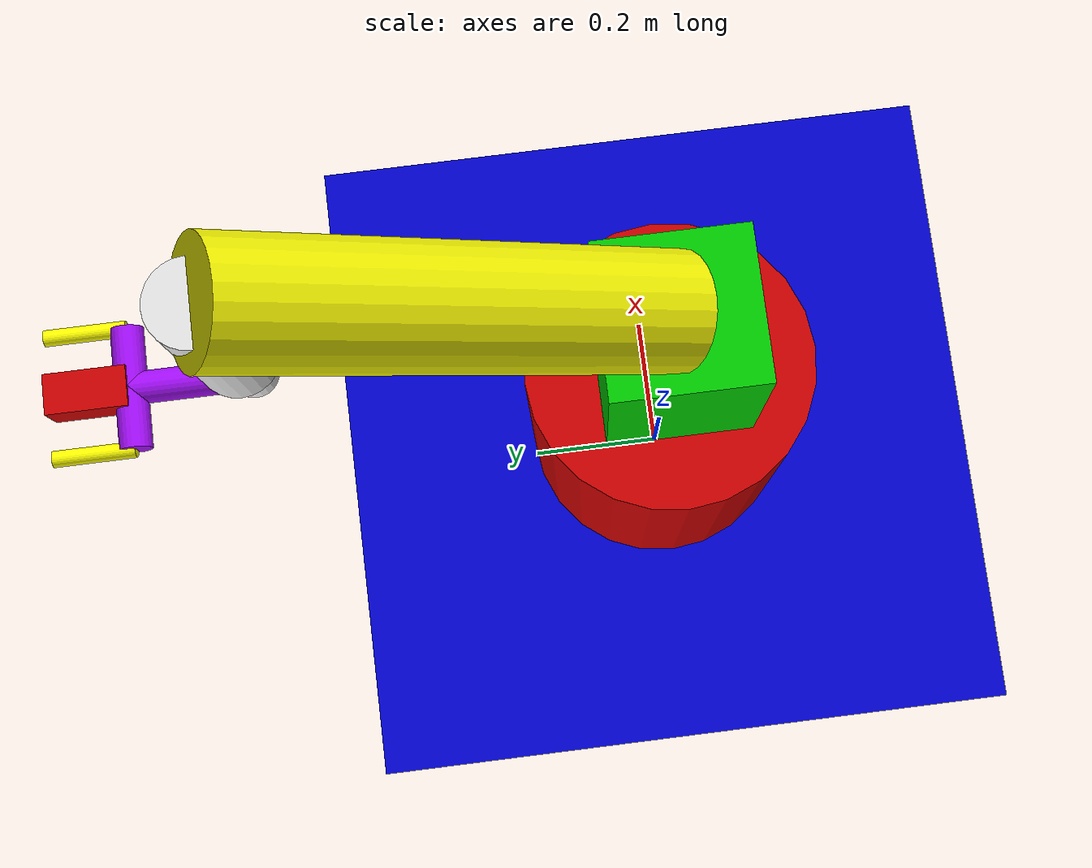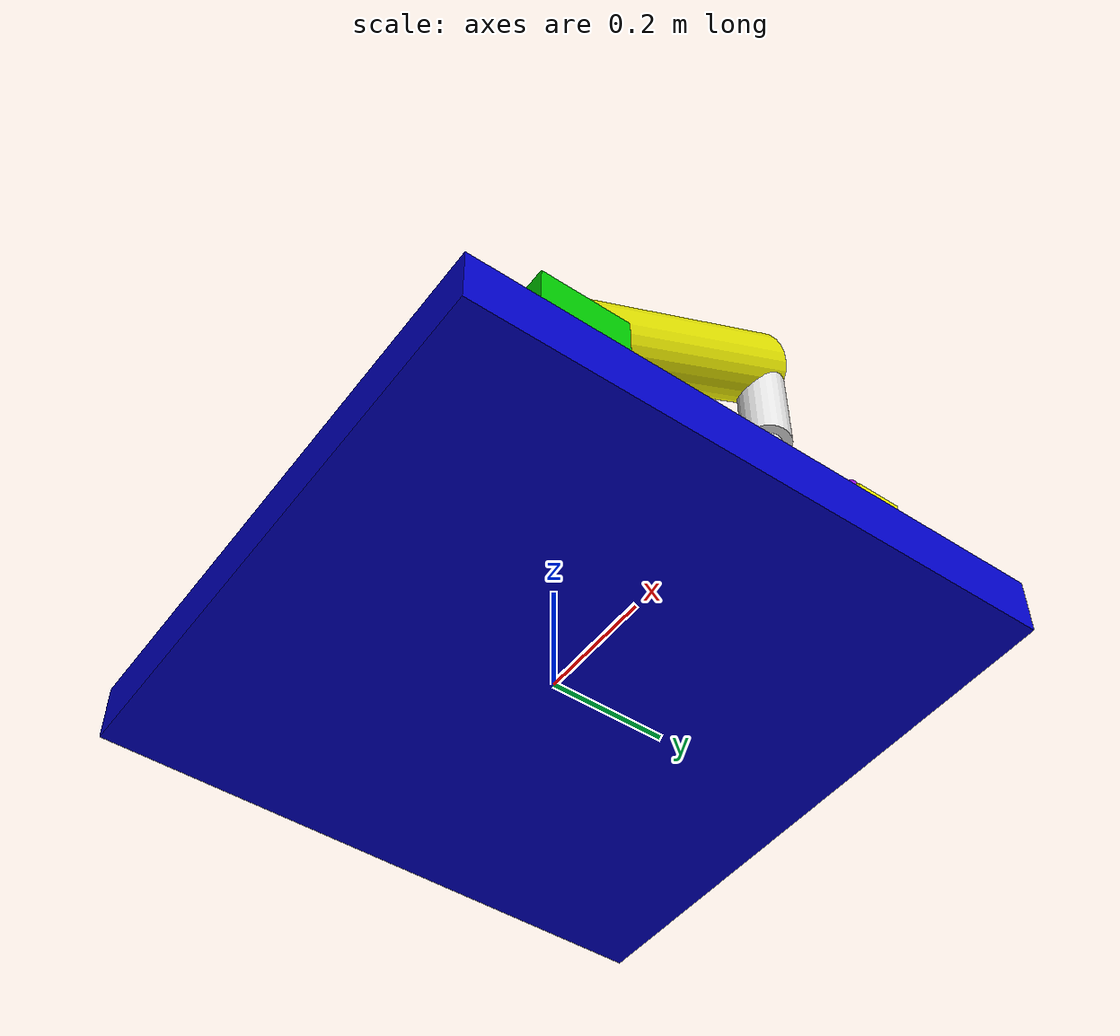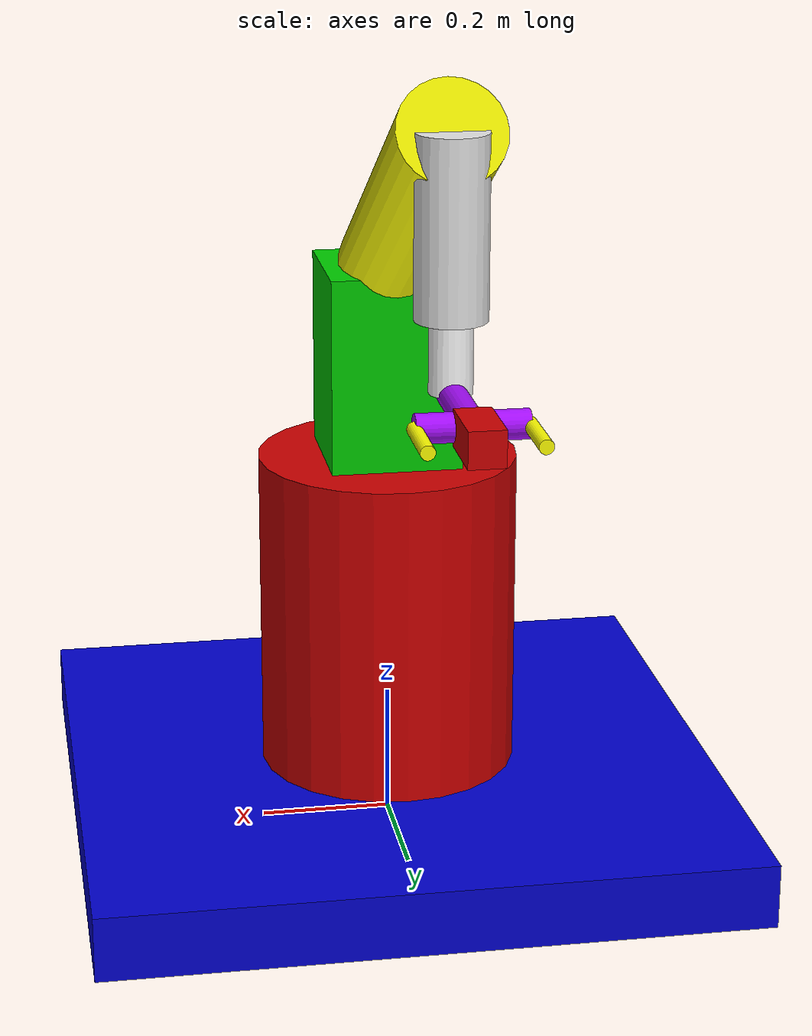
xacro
<?xml version="1.0"?>
<robot name="manipulator" xmlns:xacro="http://ros.org/wiki/xacro">

<xacro:include filename="$(find robot_description)/urdf/FromDegtoRad.xacro"/>
<xacro:include filename="$(find robot_description)/urdf/Inertial.xacro"/>
<!-- Joints and Links Names-->
<!-- Parameters that you can change-->

<!-- Base link-->
<xacro:property name = "size1_x" value= "1"/>
<xacro:property name = "size1_y" value= "1"/>
<xacro:property name = "size1_z" value= "0.1"/>

<!-- link 1-->
<xacro:property name = "len1" value= "0.5"/>
<xacro:property name = "rad1" value= "0.2"/>

<!-- link 2-->
<xacro:property name = "size2_x" value= "0.2"/>
<xacro:property name = "size2_y" value= "0.2"/>
<xacro:property name = "size2_z" value= "0.8"/>

<!-- link 3-->
<xacro:property name = "roll" value= "60"/>
<xacro:property name = "len3" value= "0.6"/>
<xacro:property name = "rad3" value= "0.075"/>

<!-- link 4-->
<xacro:property name = "len4" value= "0.25"/>
<xacro:property name = "rad4" value= "0.05"/>

<!-- link 5-->
<xacro:property name = "len5" value= "0.1"/>
<xacro:property name = "rad5" value= "0.03"/>

<!-- link 6-->
<xacro:property name = "len6" value= "0.15"/>
<xacro:property name = "rad6" value= "0.02"/>

<!-- link 7-->
<xacro:property name = "len7" value= "0.15"/>
<xacro:property name = "rad7" value= "0.02"/>

<!-- link 8-->
<xacro:property name = "len8" value= "0.1"/>
<xacro:property name = "rad8" value= "0.01"/>

<!-- link 9 the same as 8-->

<!-- Camera link -->
<xacro:property name = "camera_width" value= "0.05"/>
<xacro:property name = "camera_height" value= "0.1"/>

<!-- Base link - box-->

<!-- Definition and Geometry of world frame-->
  <link name="world_link"/>

<!-- zero_joint -->
  <joint name="zero_joint" type="fixed">
    <origin rpy="0 0 0" xyz="0 0 0"/>
    <parent link="world_link"/>
    <child link="base_link"/>
  </joint>

<!-- Definition and Geometry of base link-->

  <link name="base_link">
   <visual>
    <origin rpy="0 0 0" xyz="0 0 ${size1_z/2}"/>
     <geometry>
	 <box size = "${size1_x} ${size1_y} ${size1_z}"/>
     </geometry>
<!-- Material and color of 0 -->
   <material name = "blue">
     <color rgba = "0 0 0.8 1"/>
   </material>
   </visual>
  <collision>
       <origin rpy="0 0 0" xyz="0 0 0"/>
      <geometry>
        <box size = "${size1_x} ${size1_y} ${size1_z}"/>
      </geometry>
  </collision>
      <xacro:default_inertial mass="1000"/>

   </link>

<gazebo reference="base_link">
          <material>Gazebo/Wood</material>
</gazebo>

<!-- JOINT 1 -->
  <joint name="first_joint" type="revolute">
    <origin rpy="0 0 0" xyz="0 0 ${size1_z}"/>
    <parent link="base_link"/>
    <child link="first_link"/>
    <axis xyz="0 0 1"/>
     <limit effort="0" lower="-${90*DEG2RAD}" upper="${90*DEG2RAD}" velocity="1"/>
  </joint>

<!-- Transmission 1 -->
<transmission name="tran1">
    <type>transmission_interface/SimpleTransmission</type>
    <joint name="first_joint">
      <hardwareInterface>hardware_interface/EffortJointInterface</hardwareInterface>
    </joint>
    <actuator name="motor1">
      <hardwareInterface>hardware_interface/EffortJointInterface</hardwareInterface>
      <mechanicalReduction>1</mechanicalReduction>
    </actuator>
  </transmission>

<!-- Definition and Geometry of FIRST 1  link-->

  <link name="first_link">
   <visual>
    <origin rpy="0 0 0" xyz="0 0 ${len1/2}"/>
     <geometry>
	<cylinder radius = "${rad1}" length = "${len1}"/>
     </geometry>
<!-- Material and color of 1st -->
    <material name = "red">
     <color rgba = "0.8 0 0 1"/>
    </material>
   </visual>
  <collision>
      <origin rpy="0 0 0" xyz="0 0 ${len1/2}"/>
     <geometry>
	<cylinder radius = "${rad1}" length = "${len1}"/>
     </geometry>
  </collision>
      <xacro:default_inertial mass="100"/>
   </link>

<gazebo reference="first_link">
          <material>Gazebo/Blue</material>
</gazebo>

<!-- JOINT 2 -->
  <joint name="second_joint" type="prismatic">
    <origin rpy="0 0 0" xyz="0 0 ${len1}"/>
    <parent link="first_link"/>
    <child link="second_link"/>
    <axis xyz="0 0 1"/>
     <limit effort="10000" lower="0" upper="0.4" velocity="0.5"/>
  </joint>

<!-- TRANSMITTION 2 -->
<transmission name="tran2">
    <type>transmission_interface/SimpleTransmission</type>
    <joint name="second_joint">
      <hardwareInterface>hardware_interface/EffortJointInterface</hardwareInterface>
    </joint>
    <actuator name="motor2">
      <hardwareInterface>hardware_interface/EffortJointInterface</hardwareInterface>
      <mechanicalReduction>1</mechanicalReduction>
    </actuator>
  </transmission>

<!-- Definition and Geometry of SECOND 2 link-->

  <link name="second_link">
   <visual>
    <origin rpy="0 0 0" xyz="0 0 ${-size2_z/2+0.3}"/>
     <geometry>
	<box size = "${size2_x} ${size2_y} ${size2_z}"/>
     </geometry>
<!-- Material and color of 2st -->
    <material name = "green">
     <color rgba = "0 0.8 0 1"/>
    </material>
   </visual>
  <collision>
      <origin rpy="0 0 0" xyz="0 0 ${-size2_z/2+0.3}"/>
     <geometry>
	<box size = "0 0 0"/>
     </geometry>
  </collision>
      <xacro:default_inertial mass="1"/>
   </link>
<gazebo reference="second_link">
          <material>Gazebo/Red</material>
</gazebo>

<!-- JOINT 3 -->
  <joint name="third_joint" type="revolute">
    <origin rpy="${-roll*DEG2RAD} 0 0" xyz="0 0 0.3"/>
    <parent link="second_link"/>
    <child link="third_link"/>
    <axis xyz="1 0 0"/>
     <limit effort="1000" lower="-${45*DEG2RAD}" upper="${45*DEG2RAD}" velocity="0.5"/>
  </joint>

<!-- TRANSMITTION 3 -->
<transmission name="tran3">
    <type>transmission_interface/SimpleTransmission</type>
    <joint name="third_joint">
      <hardwareInterface>hardware_interface/EffortJointInterface</hardwareInterface>
    </joint>
    <actuator name="motor3">
      <hardwareInterface>hardware_interface/EffortJointInterface</hardwareInterface>
      <mechanicalReduction>1</mechanicalReduction>
    </actuator>
  </transmission>

<!-- Definition and Geometry of THIRD 3 link-->

  <link name="third_link">
   <visual>
       <origin rpy="0 0 0" xyz="0 0 ${len3/2}"/>
     <geometry>
	<cylinder radius = "${rad3}" length = "${len3}"/>
     </geometry>
<!-- Material and color of 3st -->
    <material name = "yellow">
     <color rgba = "0.9 0.9 0 1"/>
    </material>
   </visual>
  <collision>
       <origin rpy="0 0 0" xyz="0 0 ${len3/2}"/>
     <geometry>
	<cylinder radius = "${rad3}" length = "${len3}"/>
     </geometry>
  </collision>
      <xacro:default_inertial mass="20"/>
   </link>
<gazebo reference="third_link">
          <material>Gazebo/Yellow</material>
</gazebo>

<!-- JOINT 4 -->
  <joint name="fourth_joint" type="revolute">
    <origin rpy="${-(180-roll)*DEG2RAD} 0 0" xyz="0 0 ${len3}"/>
     <parent link="third_link"/>
     <child link="fourth_link"/>
    <axis xyz="1 0 0"/>
     <limit effort="1000" lower="0" upper="${180*DEG2RAD}" velocity="0.5"/>
  </joint>

<!-- TRANSMITTION 4 -->
<transmission name="tran4">
    <type>transmission_interface/SimpleTransmission</type>
    <joint name="fourth_joint">
      <hardwareInterface>hardware_interface/EffortJointInterface</hardwareInterface>
    </joint>
    <actuator name="motor4">
      <hardwareInterface>hardware_interface/EffortJointInterface</hardwareInterface>
      <mechanicalReduction>1</mechanicalReduction>
    </actuator>
  </transmission>

<!-- Definition and Geometry of FOURTH 4 link-->

  <link name="fourth_link">
   <visual>
       <origin rpy="0 0 0" xyz="0 0 ${len4/2}"/>
     <geometry>
	<cylinder radius = "${rad4}" length = "${len4}"/>
     </geometry>
<!-- Material and color of 4st -->
    <material name = "grey">
     <color rgba = "0.9 0.9 0.9 1"/>
    </material>
   </visual>
  <collision>
       <origin rpy="0 0 0" xyz="0 0 0.125"/>
     <geometry>
	<cylinder radius = "${rad4}" length = "${len4}"/>
     </geometry>
  </collision>
      <xacro:default_inertial mass="10"/>
   </link>
<gazebo reference="fourth_link">
          <material>Gazebo/Green</material>
</gazebo>

<!-- JOINT 5 -->
  <joint name="fifth_joint" type="revolute">
    <origin rpy="0 0 0" xyz="0 0 ${len4}"/>
     <parent link="fourth_link"/>
     <child link="fifth_link"/>
    <axis xyz="0 0 1"/>
     <limit effort="1000" lower="-${90*DEG2RAD}" upper="${90*DEG2RAD}" velocity="1"/>
  </joint>

<!-- TRANSMITTION 5 -->
<transmission name="tran5">
    <type>transmission_interface/SimpleTransmission</type>
    <joint name="fifth_joint">
      <hardwareInterface>hardware_interface/EffortJointInterface</hardwareInterface>
    </joint>
    <actuator name="motor5">
      <hardwareInterface>hardware_interface/EffortJointInterface</hardwareInterface>
      <mechanicalReduction>1</mechanicalReduction>
    </actuator>
  </transmission>

<!-- Definition and Geometry of FIFTH 5 link-->

  <link name="fifth_link">
   <visual>
       <origin rpy="0 0 0" xyz="0 0 ${len5/2}"/>
     <geometry>
	<cylinder radius = "${rad5}" length = "${len5}"/>
     </geometry>
<!-- Material and color of 5st -->
    <material name = "white">
     <color rgba = "1 1 1 1"/>
    </material>
   </visual>
  <collision>
       <origin rpy="0 0 0" xyz="0 0 ${len5/2}"/>
     <geometry>
	<cylinder radius = "${rad5}" length = "${len5}"/>
     </geometry>
  </collision>
      <xacro:default_inertial mass="4"/>
   </link>

<gazebo reference="fifth_link">
          <material>Gazebo/Purple</material>
</gazebo>

<!-- JOINT 6 -->
  <joint name="sixth_joint" type="revolute">
    <origin rpy="${90*DEG2RAD} 0 0" xyz="0 0 ${len5}"/>
     <parent link="fifth_link"/>
     <child link="sixth_link"/>
    <axis xyz="1 0 0"/>
     <limit effort="1000" lower="-${180*DEG2RAD}" upper="0" velocity="1"/>
  </joint>

<!-- TRANSMITTION 6 -->
<transmission name="tran6">
    <type>transmission_interface/SimpleTransmission</type>
    <joint name="sixth_joint">
      <hardwareInterface>hardware_interface/EffortJointInterface</hardwareInterface>
    </joint>
    <actuator name="motor6">
      <hardwareInterface>hardware_interface/EffortJointInterface</hardwareInterface>
      <mechanicalReduction>1</mechanicalReduction>
    </actuator>
  </transmission>

<!-- Definition and Geometry of SIXTH 6 link-->

  <link name="sixth_link">
   <visual>
       <origin rpy="0 0 0" xyz="0 0 ${len6/2}"/>
     <geometry>
	<cylinder radius = "${rad6}" length = "${len6}"/>
     </geometry>
<!-- Material and color of 6st -->
    <material name = "purple">
     <color rgba = "0.64 0.05 0.97 1"/>
    </material>
   </visual>
  <collision>
       <origin rpy="0 0 0" xyz="0 0 ${len6/2}"/>
     <geometry>
	<cylinder radius = "${rad6}" length = "${len6}"/>
     </geometry>
  </collision>
      <xacro:default_inertial mass="2"/>
   </link>
<gazebo reference="sixth_link">
          <material>Gazebo/Grass</material>
</gazebo>

<!-- JOINT 7 -->
  <joint name="seventh_joint" type="fixed">
    <origin rpy="0 ${90*DEG2RAD} 0" xyz="0 0 ${len6}"/>
     <parent link="sixth_link"/>
     <child link="seventh_link"/>
  </joint>

<!-- Definition and Geometry of SEVENTH 7 link-->

  <link name="seventh_link">
   <visual>
       <origin rpy="0 0 0" xyz="0 0 0"/>
     <geometry>
	<cylinder radius = "${rad7}" length = "${len7}"/>
     </geometry>
<!-- Material and color of 7 -->
    <material name = "purple">
     <color rgba = "0.64 0.05 0.97 1"/>
    </material>
   </visual>
  <collision>
       <origin rpy="0 0 0" xyz="0 0 0"/>
     <geometry>
	<cylinder radius = "${rad7}" length = "${len7}"/>
     </geometry>
  </collision>
      <xacro:default_inertial mass="1"/>
   </link>

<!-- JOINT 8 -->
  <joint name="eighth_joint" type="revolute">
    <origin rpy="0 -${90*DEG2RAD} 0" xyz="0 0 ${len7/2}"/>
     <parent link="seventh_link"/>
     <child link="eighth_link"/>
    <axis xyz="0 1 0"/>
     <limit effort="1000" lower="-${30*DEG2RAD}" upper="${30*DEG2RAD}" velocity="1"/>
  </joint>

<!-- TRANSMITTION 8 -->
<transmission name="tran8">
    <type>transmission_interface/SimpleTransmission</type>
    <joint name="eighth_joint">
      <hardwareInterface>hardware_interface/EffortJointInterface</hardwareInterface>
    </joint>
    <actuator name="motor8">
      <hardwareInterface>hardware_interface/EffortJointInterface</hardwareInterface>
      <mechanicalReduction>1</mechanicalReduction>
    </actuator>
  </transmission>

<!-- Definition and Geometry of SIXTH 8 link-->

  <link name="eighth_link">
   <visual>
       <origin rpy="0 0 0" xyz="0 0 ${len8/2}"/>
     <geometry>
	<cylinder radius = "${rad8}" length = "${len8}"/>
     </geometry>
<!-- Material and color of 8st -->
    <material name = "yellow2">
     <color rgba = "1 1 0 1"/>
    </material>
   </visual>
  <collision>
       <origin rpy="0 0 0" xyz="0 0 ${len8/2}"/>
     <geometry>
	<cylinder radius = "${rad8}" length = "${len8}"/>
     </geometry>
  </collision>
     <xacro:default_inertial mass="0.5"/>
   </link>

<!-- JOINT 9 -->
  <joint name="nineth_joint" type="revolute">
    <origin rpy="0 -${90*DEG2RAD} 0" xyz="0 0 -${len7/2}"/>
     <parent link="seventh_link"/>
     <child link="nineth_link"/>
    <axis xyz="0 1 0"/>
      <limit effort="1000" lower="-${30*DEG2RAD}" upper="${30*DEG2RAD}" velocity="1"/>
  </joint>

<!-- TRANSMITTION 9 -->
<transmission name="tran9">
    <type>transmission_interface/SimpleTransmission</type>
    <joint name="nineth_joint">
      <hardwareInterface>hardware_interface/EffortJointInterface</hardwareInterface>
    </joint>
    <actuator name="motor9">
      <hardwareInterface>hardware_interface/EffortJointInterface</hardwareInterface>
      <mechanicalReduction>1</mechanicalReduction>
    </actuator>
  </transmission>

<!-- Definition and Geometry of NINETH 9 link-->

  <link name="nineth_link">
   <visual>
       <origin rpy="0 0 0" xyz="0 0 ${len8/2}"/>
     <geometry>
	<cylinder radius = "${rad8}" length = "${len8}"/>
     </geometry>
<!-- Material and color of 8st -->
    <material name = "yellow2">
     <color rgba = "1 1 0 1"/>
    </material>
   </visual>
  <collision>
       <origin rpy="0 0 0" xyz="0 0 ${len8/2}"/>
     <geometry>
	<cylinder radius = "${rad8}" length = "${len8}"/>
     </geometry>
  </collision>
      <xacro:default_inertial mass="0.5"/>
   </link>

<!-- CAMERA to the 7 Fixed Link-->

<!-- Camera Joint-->
	<joint name="camera_joint" type="fixed">
		<axis xyz = "-1 0 0" />
    	<origin rpy="0 ${90*DEG2RAD} 0" xyz="0 0 ${len6}"/>
    	<parent link="sixth_link"/>
   		<child link="camera_link"/>
 	</joint>

<!-- Camera Link-->
 <link name="camera_link">
    <collision>
      <origin xyz=" ${-camera_height/2} 0 0" rpy="0 0 0"/>
      <geometry>
    <box size="${camera_height} ${camera_width} ${camera_width}"/>
      </geometry>
    </collision>

    <visual>
      <origin xyz="${-camera_height/2}  0 0" rpy="0 0 0"/>
      <geometry>
    <box size="${camera_height} ${camera_width} ${camera_width}"/>
      </geometry>
      <material name="red"/>
    </visual>

    <inertial>
      <mass value="1e-5" />
      <origin xyz="0 0 0" rpy="0 0 0"/>
      <inertia ixx="1e-6" ixy="0" ixz="0" iyy="1e-6" iyz="0" izz="1e-6" />
    </inertial>
  </link>
<!-- Camera Colour-->
    <gazebo reference="camera_link">
          <material>Gazebo/Orange</material>
    </gazebo>

<!-- Plugin for control-->
  <gazebo>
    <plugin name="gazebo_ros_control" filename="libgazebo_ros_control.so">
      <robotNamespace>/manipulator</robotNamespace>
      <robotSimType>gazebo_ros_control/DefaultRobotHWSim</robotSimType>
    </plugin>
  </gazebo>

<!-- Camera Plugin-->

  <gazebo reference="camera_link">
    <sensor type="camera" name="camera1">
      <update_rate>30.0</update_rate>
      <camera name="head">
        <horizontal_fov>1.3962634</horizontal_fov>
        <image>
          <width>800</width>
          <height>800</height>
          <format>R8G8B8</format>
        </image>
        <clip>
          <near>0.02</near>
          <far>300</far>
        </clip>
        <noise>
          <type>gaussian</type>
          <!-- Noise is sampled independently per pixel on each frame.
               That pixel's noise value is added to each of its color
               channels, which at that point lie in the range [0,1]. -->
          <mean>0.0</mean>
          <stddev>0.007</stddev>
        </noise>
      </camera>
<!-- Camera Controller-->
      <plugin name="camera_controller" filename="libgazebo_ros_camera.so">
        <alwaysOn>true</alwaysOn>
        <updateRate>0.0</updateRate>
        <cameraName>manipulator/camera1</cameraName>
        <imageTopicName>image_raw</imageTopicName>
        <cameraInfoTopicName>camera_info</cameraInfoTopicName>
        <frameName>camera_link</frameName>
        <hackBaseline>0.07</hackBaseline>
        <distortionK1>0.0</distortionK1>
        <distortionK2>0.0</distortionK2>
        <distortionK3>0.0</distortionK3>
        <distortionT1>0.0</distortionT1>
        <distortionT2>0.0</distortionT2>
      </plugin>
    </sensor>
  </gazebo>

</robot>

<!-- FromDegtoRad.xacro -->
<robot xmlns:xacro="http://ros.org/wiki/xacro">

<xacro:property name="DEG2RAD" value="0.017453292519943295" />

</robot>

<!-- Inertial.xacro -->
<robot xmlns:xacro="http://ros.org/wiki/xacro">

 <xacro:macro name="default_inertial" params="mass">
            <inertial>
                    <mass value="${mass}" />
                    <inertia ixx="1.0" ixy="0.0" ixz="0.0"
                         iyy="0.5" iyz="0.0"
                        izz="1.0" />
           </inertial>
       </xacro:macro>

</robot>
